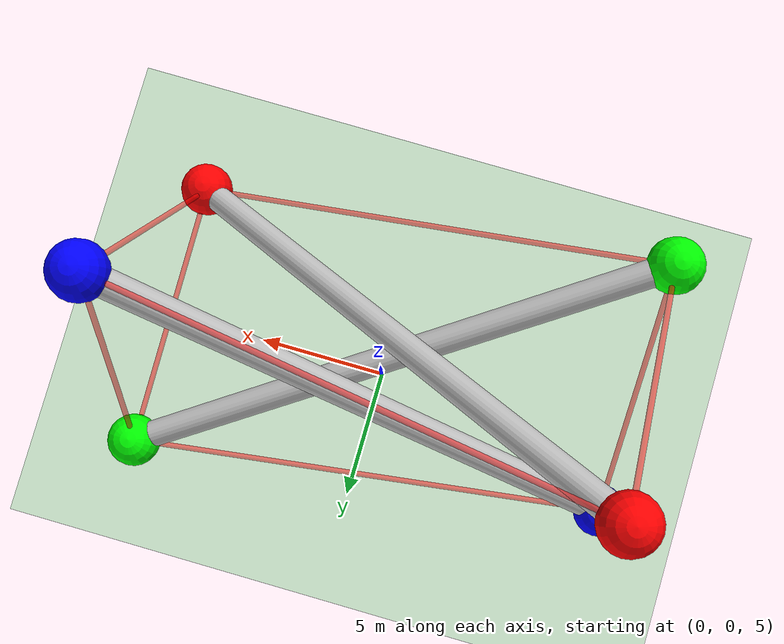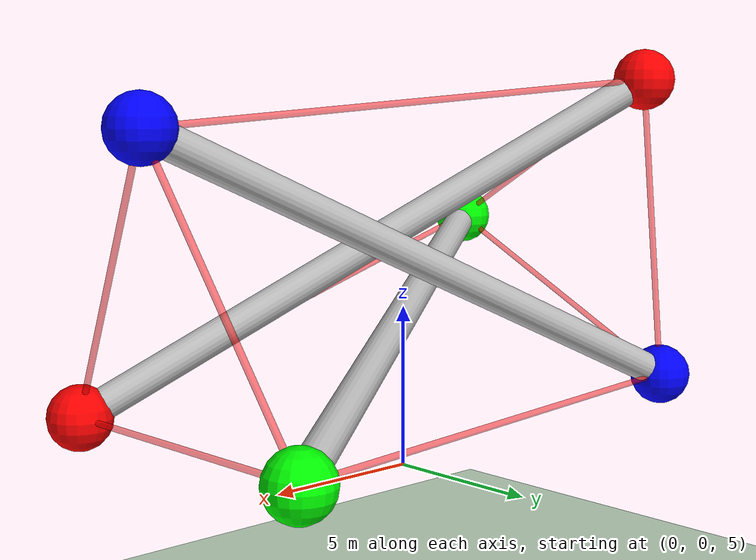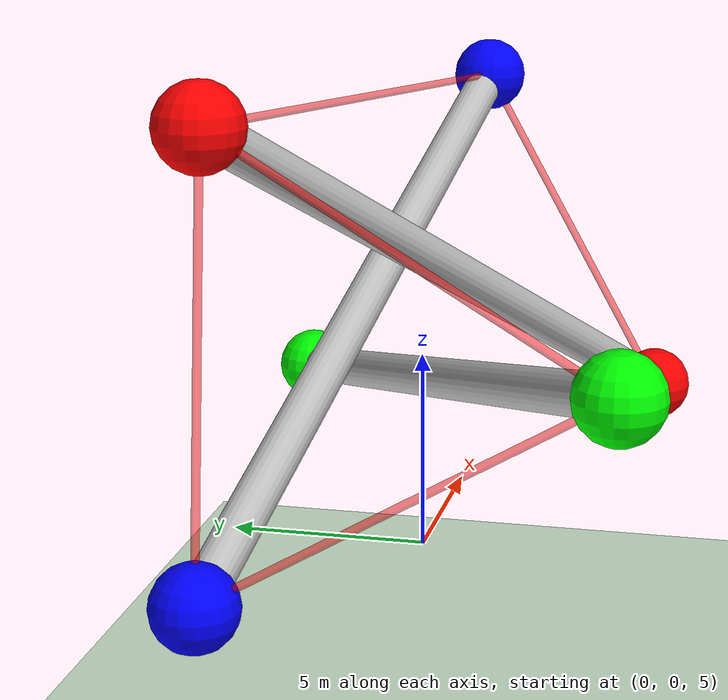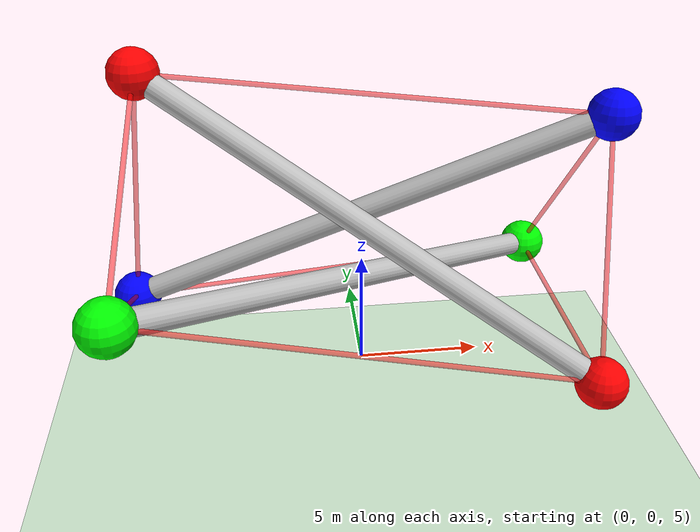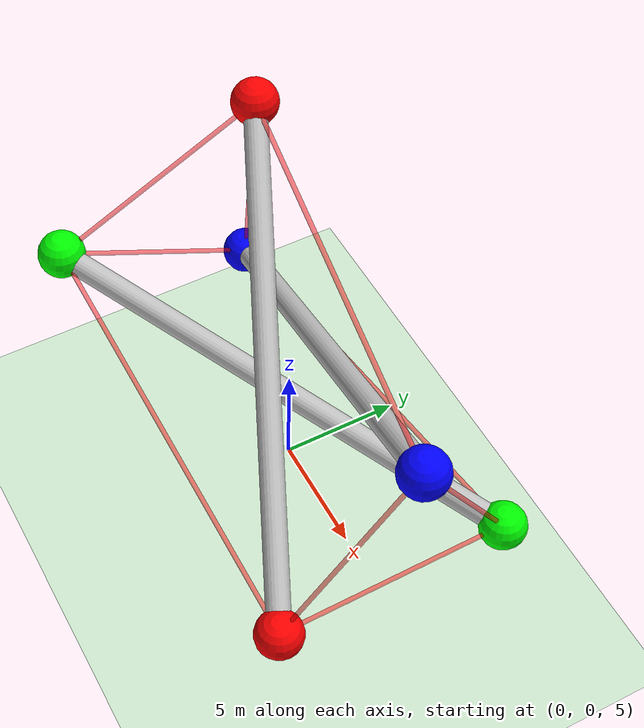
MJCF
<!--
  ~ Copyright (c) 2021.  -  present.  Kun Wang. All Rights Reserved.
  -->

<mujoco model="TT (v1.31)">
    <compiler angle="degree" coordinate="global" inertiafromgeom="true" autolimits="true">
             <lengthrange timestep="0.001"/>
    </compiler>

    <option timestep="0.001"
            gravity="0 0 -9.81"
            cone="elliptic"
            solver="Newton"
            integrator="Euler"
            iterations="100">
        <flag sensornoise="disable"
            frictionloss="disable"/>
    </option>

    <visual>
        <global offwidth="1024" offheight="768"/>
    </visual>

    <default>
        <geom conaffinity="1" condim="6" contype="1" rgba="0.75 0.75 0.75 1" size="0.014"
              density="1000" friction="1.000 0.00 0.000" solref="-1000 -100"/>
        <site type="sphere" size="0.005"/>
        <tendon width="0.1" rgba="1 0 0 0.5" damping="1000" stiffness="10000"/>
        <general ctrlrange="-1 1" dyntype="filter" gainprm="50000 0 0" biastype="none" dynprm="1 0 0" biasprm="0 0 0"/>
    </default>

    <asset>
        <texture builtin="gradient" height="100" rgb1="1 1 1" rgb2="0 0 0" type="skybox"
                 width="100"/>
        <texture builtin="flat" height="1278" mark="cross" markrgb="1 1 1" name="texgeom"
                 random="0.01" rgb1="0.8 0.6 0.4" rgb2="0.8 0.6 0.4" type="cube" width="127"/>
        <texture builtin="checker" height="100" name="texplane" rgb1="0 0 0" rgb2="0.8 0.8 0.8"
                 type="2d" width="100"/>
        <material name="MatPlane" reflectance="0." shininess="0.5" specular="0.5" texrepeat="30 30"
                  texture="texplane"/>
        <material name="geom" texture="texgeom" texuniform="true"/>
    </asset>

    <worldbody>

        <light cutoff="100" diffuse="1 1 1" dir="-0 0 -1.3" directional="true" exponent="1"
               pos="0 0 1.3" specular=".1 .1 .1"/>
        <geom conaffinity="1" material="MatPlane" name="floor" pos="0 0 0"
              rgba="0.8 0.9 0.8 1" size="400 400 10" type="plane"/>
         <!-- top 90 camera-->
 <!-- top camera-->
<!--         side camera-->
        <camera name="camera" pos="0 -50 12" axisangle="1 0 0 80"/>

        <!-- ======= RODS ======= -->
        <body name="r01">
            <geom name="r01"
                  fromto="-8.75     -5.94      11.96  8.38      5.16      7"
                  size="0.5"
                  type="cylinder"
                  mass="2.4"/>
            <freejoint name="move0_1"/>
            <geom name="s0"
                  pos="-8.75     -5.94      11.96"
                  size="1"
                  type="sphere"
                  mass="1.0"
                  rgba="0 1 0 1"
            />
            <geom name="s1"
                  pos="8.38      5.16      7"
                  size="1"
                  type="sphere"
                  rgba="0 1 0 1"
                  mass="1.0"/>
<!--                  pos="-6.31     -4.35      5.25"-->
<!--                  size="0.6"-->
<!--                  type="sphere"-->
<!--                  rgba="0 1 0 1"-->
<!--                  pos="5.93      3.57      1.71"-->
<!--                  size="0.6"-->
<!--                  type="sphere"-->
<!--                  rgba="0 1 0 1"-->

            <site name="s0" pos="-8.75     -5.94      11.96" rgba="0 1 0 1" size=".05"/>
            <site name="s1" pos="8.38      5.16      7" rgba="0 1 0 1" size=".05"/>
        </body>

        <body name="r23">
            <geom name="r23"
                  fromto="-8.26      2.81      17   8.51     -4.94      6.999"
                  size="0.5"
                  type="cylinder"
                  mass="2.4"/>
            <freejoint name="move2_3"/>
            <geom name="s2"
                  pos="-8.26      2.81      17"
                  size="1"
                  type="sphere"
                  rgba="1 0 0 1"
                  mass="1"/>
            <geom name="s3"
                  pos="8.51     -4.94      6.999"
                  size="1"
                  type="sphere"
                  rgba="1 0 0 1"
                  mass="1"/>
<!--                  pos="-5.87      1.7       9.55"-->
<!--                  size="0.6"-->
<!--                  type="sphere"-->
<!--                  rgba="1 0 0 1"-->
<!--                  pos="6.11     -3.83      2.42"-->
<!--                  size="0.6"-->
<!--                  type="sphere"-->
<!--                  rgba="1 0 0 1"-->
            <site name="s2" pos="-8.26      2.81      17" rgba="1 0 0 1" size=".05"/>
            <site name="s3" pos="8.51     -4.94      6.999" rgba="1 0 0 1" size=".05"/>
        </body>

        <body name="r45">
            <geom name="r45"
                  fromto="-9.47      2.81      6.999 9.48      0.112     15.65"
                  size="0.5"
                  type="cylinder"
                  mass="2.4"/>
            <freejoint name="move4_5"/>
            <geom name="s4"
                  pos="-9.47      2.81      6.999"
                  size="1"
                  type="sphere"
                  rgba="0 0 1 1"
                  mass="1.0"/>
            <geom name="s5"
                  pos="9.48      0.112     15.65"
                  size="1"
                  type="sphere"
                  rgba="0 0 1 1"
                  mass="1"/>
<!--                  pos="-6.76      2.43      2.23"-->
<!--                  size="0.6"-->
<!--                  type="sphere"-->
<!--                  rgba="0 0 1 1"-->
<!--                  pos="6.77      0.498     8.41"-->
<!--                  size="0.6"-->
<!--                  type="sphere"-->
<!--                  rgba="0 0 1 1"-->
            <site name="s4" pos="-9.47      2.81      6.999" rgba="0 0 1 1" size=".05"/>
            <site name="s5" pos="9.48      0.112     15.65" rgba="0 0 1 1" size=".05"/>
        </body>
    </worldbody>

    <tendon>
        <spatial name="td_0" springlength="7.5" damping="130" stiffness="490">
            <site site="s0"/>
            <site site="s4"/>
        </spatial>
        <spatial name="td_1" springlength="7.5" damping="110" stiffness="540">
            <site site="s0"/>
            <site site="s2"/>
        </spatial>
        <spatial name="td_2" springlength="7.5" damping="102" stiffness="600">
            <site site="s2"/>
            <site site="s4"/>
        </spatial>
        <spatial name="td_3" springlength="7.5" damping="89" stiffness="486">
            <site site="s1"/>
            <site site="s5"/>
        </spatial>
        <spatial name="td_4" springlength="7.5" damping="95" stiffness="550">
            <site site="s1"/>
            <site site="s3"/>
        </spatial>
        <spatial name="td_5" springlength="7.5" damping="110" stiffness="500">
            <site site="s3"/>
            <site site="s5"/>
        </spatial>
        <spatial name="td_6" springlength="10" damping="120" stiffness="1100">
            <site site="s4"/>
            <site site="s1"/>
        </spatial>
        <spatial name="td_7" springlength="10" damping="105" stiffness="800">
            <site site="s0"/>
            <site site="s3"/>
        </spatial>
        <spatial name="td_8" springlength="10" damping="100" stiffness="1000">
            <site site="s2"/>
            <site site="s5"/>
        </spatial>
    </tendon>

    <sensor>
        <framepos name="pos_s0" objname="s0" objtype="site"/>
        <framelinvel name="linvel_s0" objname="s0" objtype="site"/>
        <framelinacc name="linacc_s0" objname="s0" objtype="site"/>
        <framepos name="pos_s1" objname="s1" objtype="site"/>
        <framelinvel name="linvel_s1" objname="s1" objtype="site"/>
        <framelinacc name="linacc_s1" objname="s1" objtype="site"/>

        <framepos name="pos_s2" objname="s2" objtype="site"/>
        <framelinvel name="linvel_s2" objname="s2" objtype="site"/>
        <framelinacc name="linacc_s2" objname="s2" objtype="site"/>
        <framepos name="pos_s3" objname="s3" objtype="site"/>
        <framelinvel name="linvel_s3" objname="s3" objtype="site"/>
        <framelinacc name="linacc_s3" objname="s3" objtype="site"/>

        <framepos name="pos_s4" objname="s4" objtype="site"/>
        <framelinvel name="linvel_s4" objname="s4" objtype="site"/>
        <framelinacc name="linacc_s4" objname="s4" objtype="site"/>
        <framepos name="pos_s5" objname="s5" objtype="site"/>
        <framelinvel name="linvel_s5" objname="s5" objtype="site"/>
        <framelinacc name="linacc_s5" objname="s5" objtype="site"/>

        <framelinacc name="linacc_r01" objname="r01" objtype="geom"/>
        <frameangacc name="angacc_r01" objname="r01" objtype="geom"/>
        <framepos name="pos_r01" objname="r01" objtype="geom"/>
        <framelinvel name="linvel_r01" objname="r01" objtype="geom"/>
        <frameangvel name="angvel_r01" objname="r01" objtype="geom"/>
        <framequat name="quat_r01" objname="r01" objtype="geom"/>

        <framelinacc name="linacc_r23" objname="r23" objtype="geom"/>
        <frameangacc name="angacc_r23" objname="r23" objtype="geom"/>
        <framepos name="pos_r23" objname="r23" objtype="geom"/>
        <framelinvel name="linvel_r23" objname="r23" objtype="geom"/>
        <frameangvel name="angvel_r23" objname="r23" objtype="geom"/>
        <framequat name="quat_r23" objname="r23" objtype="geom"/>

        <framelinacc name="linacc_r45" objname="r45" objtype="geom"/>
        <frameangacc name="angacc_r45" objname="r45" objtype="geom"/>
        <framepos name="pos_r45" objname="r45" objtype="geom"/>
        <framelinvel name="linvel_r45" objname="r45" objtype="geom"/>
        <frameangvel name="angvel_r45" objname="r45" objtype="geom"/>
        <framequat name="quat_r45" objname="r45" objtype="geom"/>
    </sensor>

    <actuator>
        <general name='act_0' tendon="td_0"/>
        <general name='act_1' tendon="td_1"/>
        <general name='act_2' tendon="td_2"/>
        <general name='act_3' tendon="td_3"/>
        <general name='act_4' tendon="td_4"/>
        <general name='act_5' tendon="td_5"/>
        <general name='act_6' tendon="td_6"/>
        <general name='act_7' tendon="td_7"/>
        <general name='act_8' tendon="td_8"/>
    </actuator>
</mujoco>
